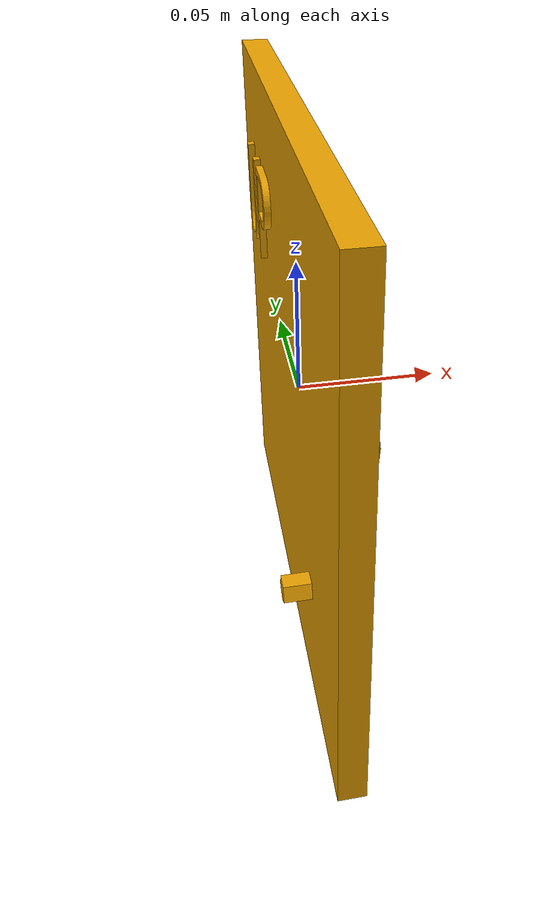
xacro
<?xml version="1.0"?>
 <!--
        min_frequency
        max_frequency
        power
        sensitivity
-->

<robot xmlns:xacro="http://www.ros.org/wiki/xacro" name="rfid_reader">

  <xacro:arg name="tf_prefix" default=""/>

  <xacro:arg name="min_frequency" default="800.0"/>
  <xacro:arg name="max_frequency" default="920.0"/>
  <xacro:arg name="power" default="20"/>
  <xacro:arg name="sensitivity" default="-85.0"/>

  <!-- RFID reader -->
  <link name="$(arg tf_prefix)/reader_link">
    <collision name="reader_collision">
      <origin xyz="0 0 0" rpy="0 0 0"/>
      <geometry>
        <!-- mesh filename="model://antenna/antenna.stl"/ -->
        <mesh scale="0.5 0.5 0.5" filename="package://gazebo_rfid_node/models/antenna/antenna.stl"/>
      </geometry>
    </collision>

    <visual>
      <origin xyz="0 0 0" rpy="0 0 0"/>
      <geometry>
        <!-- mesh filename="model://antenna/antenna.stl"/ -->
        <mesh scale="0.5 0.5 0.5" filename="package://gazebo_rfid_node/models/antenna/antenna.stl"/>
      </geometry>
    </visual>

    <inertial>
      <mass value="1e-5" />
      <origin xyz="0 0 0" rpy="0 0 0"/>
      <inertia ixx="1e-6" ixy="0" ixz="0" iyy="1e-6" iyz="0" izz="1e-6" />
    </inertial>
  </link>

  <gazebo reference="$(arg tf_prefix)/reader_link">
    <sensor name="rfid_reader_sensor" type="rfid_reader">
      <pose>0 0 0 0 0 0</pose>
      <visualize>true</visualize>
      <update_rate>40</update_rate>
      <always_on>1</always_on>
      <transceiver>
        <min_frequency>$(arg min_frequency)</min_frequency>
        <max_frequency>$(arg max_frequency)</max_frequency>
        <power>$(arg power)</power>
        <sensitivity>$(arg sensitivity)</sensitivity>
      </transceiver>

    </sensor>
  </gazebo>

</robot>
